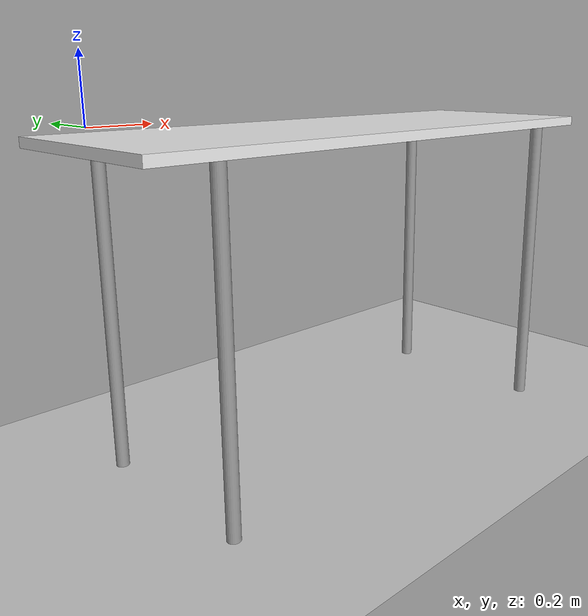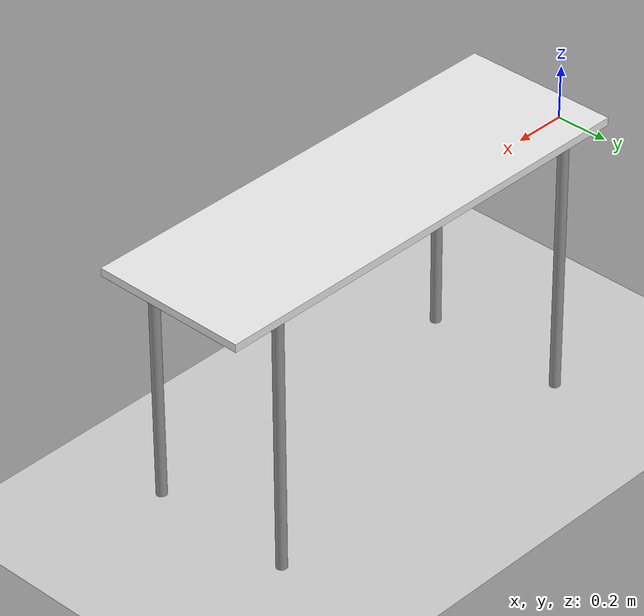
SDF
<?xml version="1.0" ?>
<sdf version="1.4">

  <world name="default">
    <include>
      <uri>model://ground_plane</uri>
      <pose>0 0 -1.035 0 0 0</pose>
    </include>

    <include>
      <uri>model://fable</uri>
      <pose>.75 -0.2 -1.035 0 0 0</pose>
      <static>true</static>
    </include>

    <!-- Global light source -->
    <include>
      <uri>model://sun</uri>
    </include>

    <!-- Focus camera on tall pendulum -->
    <gui fullscreen='0'>
      <camera name='user_camera'>
        <pose>2.927360 -2.376610 1.740080 0.000000 0.375643 2.356190</pose>
        <view_controller>orbit</view_controller>
      </camera>
    </gui>

    <plugin name="physics_plugin" filename="libgazebo_physics_plugin.so"/>

  </world>
</sdf>

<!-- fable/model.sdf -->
<sdf version="1.5">
  <model name="fable">
    <static>true</static>
    <link name="link">
      <collision name="surface">
        <pose>0 0 1.0 0 0 0</pose>
        <geometry>
          <box>
            <size>1.77 0.6 0.03</size>
          </box>
        </geometry>
        <surface>
          <friction>
            <ode>
              <mu>0.6</mu>
              <mu2>0.6</mu2>
            </ode>
          </friction>
        </surface>
      </collision>
      <visual name="visual1">
        <pose>0 0 1.0 0 0 0</pose>
        <geometry>
          <box>
            <size>1.77 0.6 0.03</size>
          </box>
        </geometry>
        <material>
          <script>
            <uri>file://media/materials/scripts/gazebo.material</uri>
            <name>Gazebo/White</name>
          </script>
        </material>
      </visual>
      <collision name="front_left_leg">
        <pose>0.58 0.28 0.5 0 0 0</pose>
        <geometry>
          <cylinder>
            <radius>0.02</radius>
            <length>1.0</length>
          </cylinder>
        </geometry>
      </collision>
      <visual name="front_left_leg">
        <pose>0.68 0.28 0.5 0 0 0</pose>
        <geometry>
          <cylinder>
            <radius>0.02</radius>
            <length>1.0</length>
          </cylinder>
        </geometry>
        <material>
          <script>
            <uri>file://media/materials/scripts/gazebo.material</uri>
            <name>Gazebo/Grey</name>
          </script>
        </material>
      </visual>
      <collision name="front_right_leg">
        <pose>0.68 -0.28 0.5 0 0 0</pose>
        <geometry>
          <cylinder>
            <radius>0.02</radius>
            <length>1.0</length>
          </cylinder>
        </geometry>
      </collision>
      <visual name="front_right_leg">
        <pose>0.68 -0.28 0.5 0 0 0</pose>
        <geometry>
          <cylinder>
            <radius>0.02</radius>
            <length>1.0</length>
          </cylinder>
        </geometry>
        <material>
          <script>
            <uri>file://media/materials/scripts/gazebo.material</uri>
            <name>Gazebo/Grey</name>
          </script>
        </material>
      </visual>
      <collision name="back_right_leg">
        <pose>-0.68 -0.28 0.5 0 0 0</pose>
        <geometry>
          <cylinder>
            <radius>0.02</radius>
            <length>1.0</length>
          </cylinder>
        </geometry>
      </collision>
      <visual name="back_right_leg">
        <pose>-0.68 -0.28 0.5 0 0 0</pose>
        <geometry>
          <cylinder>
            <radius>0.02</radius>
            <length>1.0</length>
          </cylinder>
        </geometry>
        <material>
          <script>
            <uri>file://media/materials/scripts/gazebo.material</uri>
            <name>Gazebo/Grey</name>
          </script>
        </material>
      </visual>
      <collision name="back_left_leg">
        <pose>-0.68 0.28 0.5 0 0 0</pose>
        <geometry>
          <cylinder>
            <radius>0.02</radius>
            <length>1.0</length>
          </cylinder>
        </geometry>
      </collision>
      <visual name="back_left_leg">
        <pose>-0.68 0.28 0.5 0 0 0</pose>
        <geometry>
          <cylinder>
            <radius>0.02</radius>
            <length>1.0</length>
          </cylinder>
        </geometry>
        <material>
          <script>
            <uri>file://media/materials/scripts/gazebo.material</uri>
            <name>Gazebo/Grey</name>
          </script>
        </material>
      </visual>
    </link>
  </model>
</sdf>
